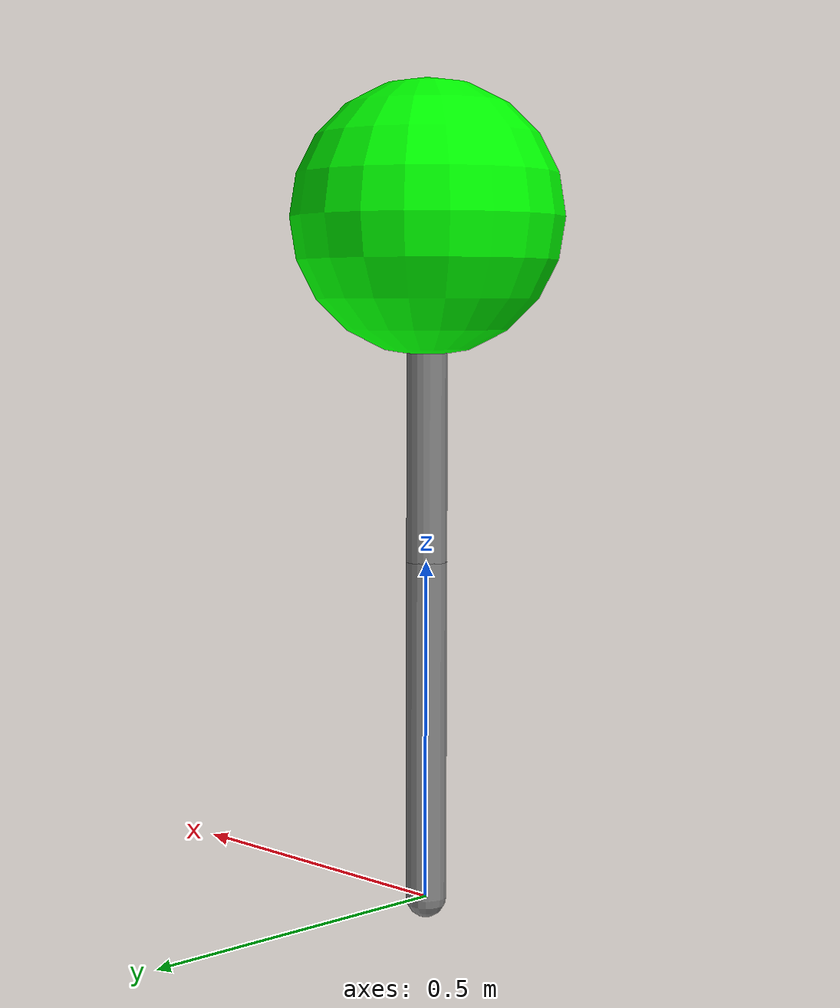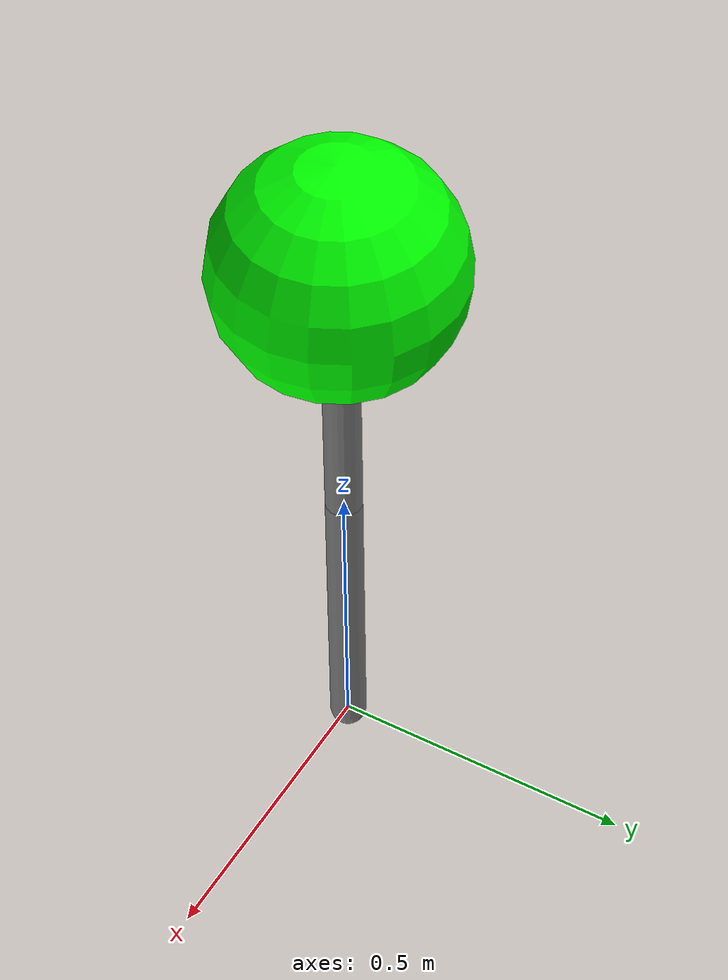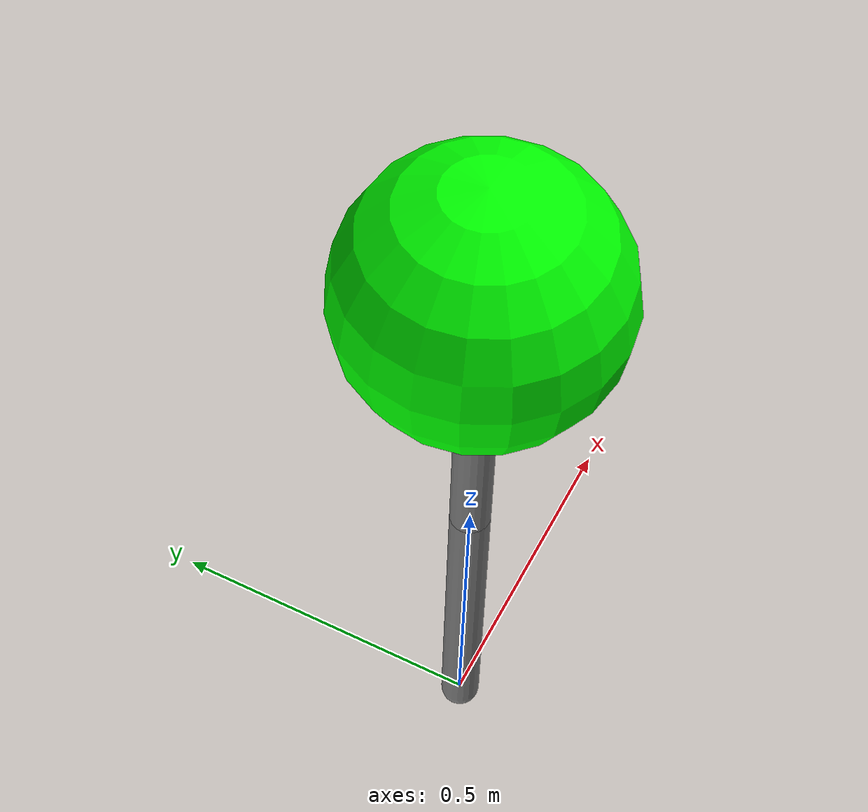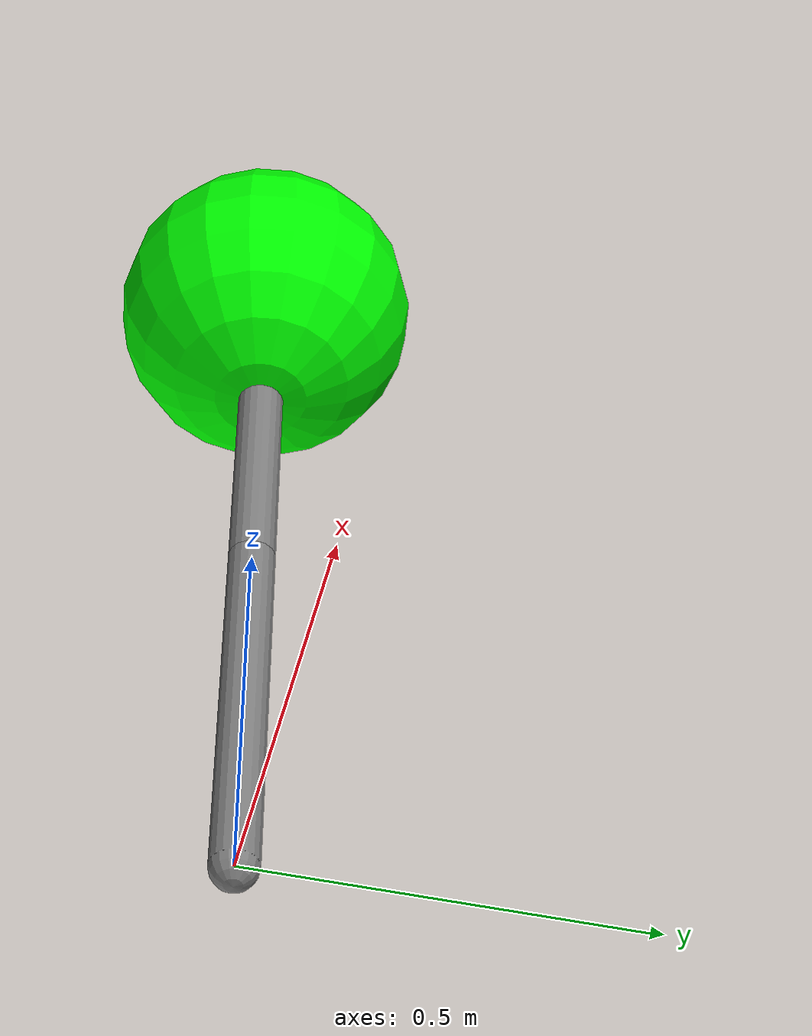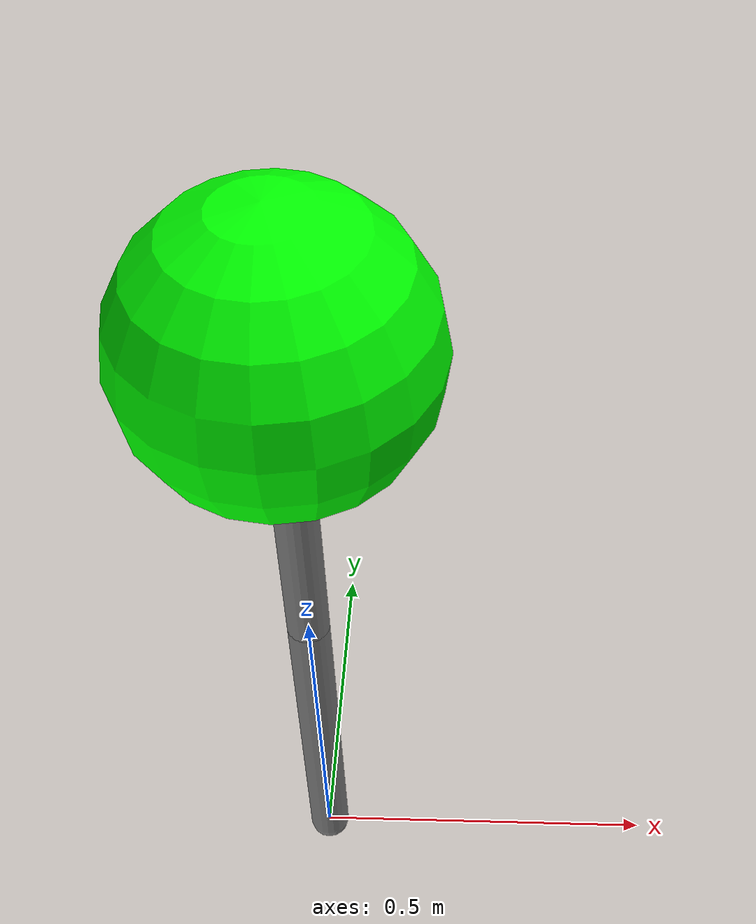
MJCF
<?xml version="1.0" encoding="utf-8"?>
<mujoco model="double_revolute">

    <visual>
        <global offwidth="1280" offheight="720"/>
    </visual>

    <option gravity="0 0 -9.81">
    </option>

    <worldbody>
        <!-- Fixed base -->
        <body name="base" pos="0 0 0">

            <!-- First link -->
            <body name="link1" pos="0 0 0">
                <joint name="joint1" type="hinge" axis="0 1 0" pos="0 0 0" limited="false"/>
                <geom name="link1_geom" type="capsule" fromto="0 0 0 0 0 0.5" size="0.03"/>

                <!-- Second link -->
                <body name="link2" pos="0 0 0.5">
                    <joint name="joint2" type="hinge" axis="0 1 0" pos="0 0 0" limited="false"/>
                    <geom name="link2_geom" type="capsule"
                          fromto="0 0 0 0 0 +0.5" size="0.03"/>

                    <!-- Bob -->
                    <body name="bob2" pos="0 0 +0.5">
                        <geom name="bob2_geom" type="sphere"
                              size="0.2" density="1000" rgba="0 1 0 1"/>
                    </body>

                </body>

            </body>

        </body>
    </worldbody>

    <keyframe>
    <key name="keyframe_1" qpos="0 0" qvel="0 0" />
    </keyframe>

    <!-- Optional actuators -->
    <actuator>
        <motor name="a1" joint="joint1" ctrlrange="-800 800" />
        <motor name="a2" joint="joint2" ctrlrange="-800 800" />
    </actuator>

</mujoco>
